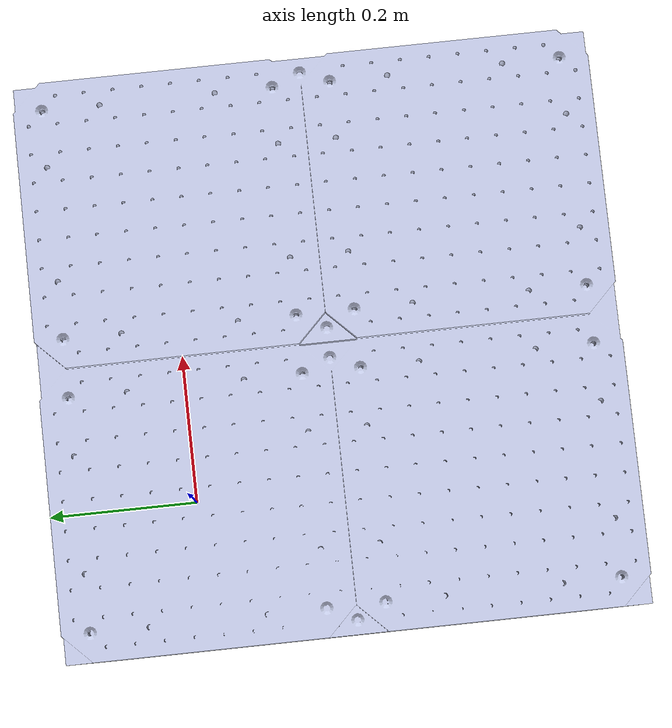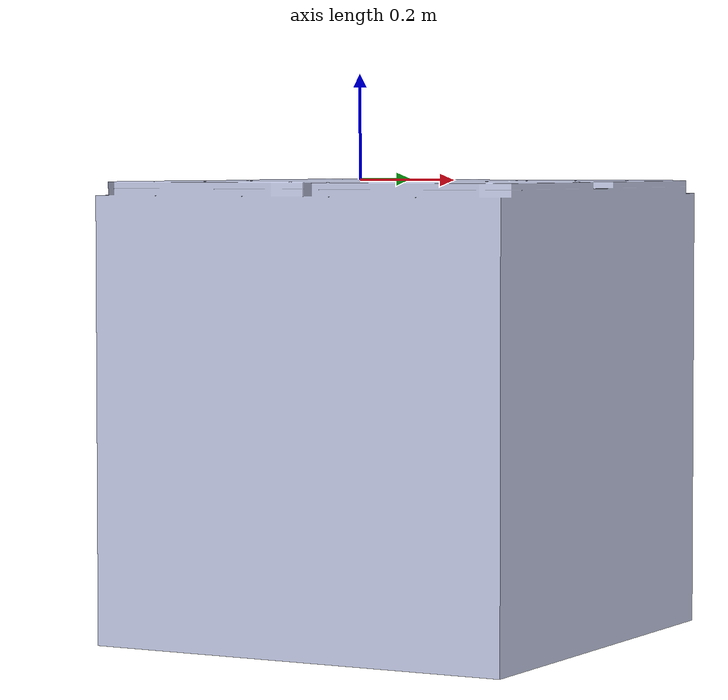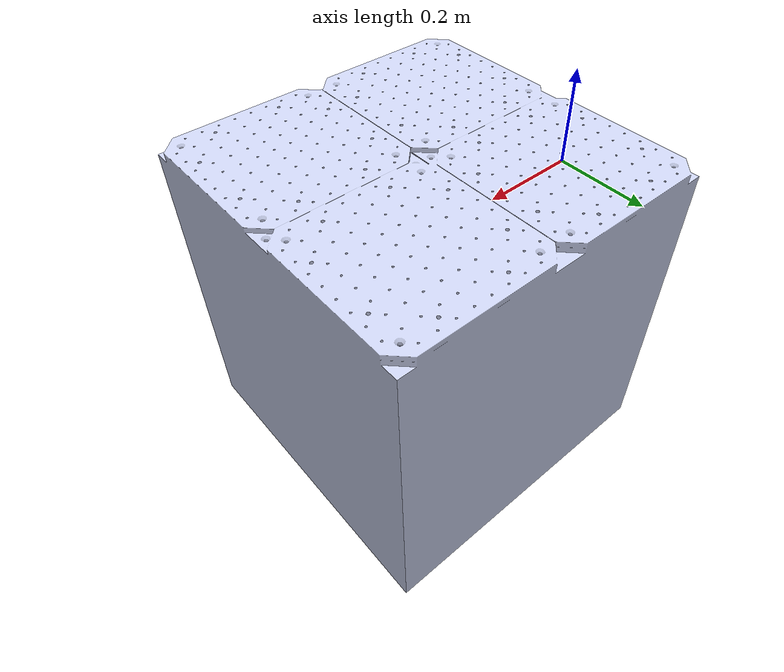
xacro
<?xml version="1.0"?>
<robot xmlns:xacro="http://wiki.ros.org/xacro"
       name="ur5" >
    <link
      name="table">
      <visual>
        <origin
          xyz="0 0 0"
          rpy="0 0 0" />
        <geometry>
          <mesh
            filename="package://lego_robot_description/meshes/table/table.STL" />
        </geometry>
        <material
          name="">
          <color
            rgba="0.79216 0.81961 0.93333 1" />
        </material>
      </visual>
      <collision>
        <origin
          xyz="0 0 0"
          rpy="0 0 0" />
        <geometry>
          <mesh
            filename="package://lego_robot_description/meshes/table/table.STL" />
        </geometry>
      </collision>
    </link>
</robot>
